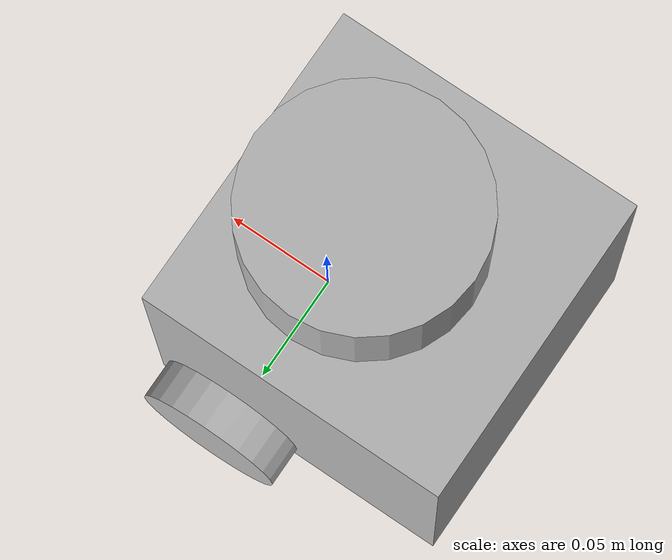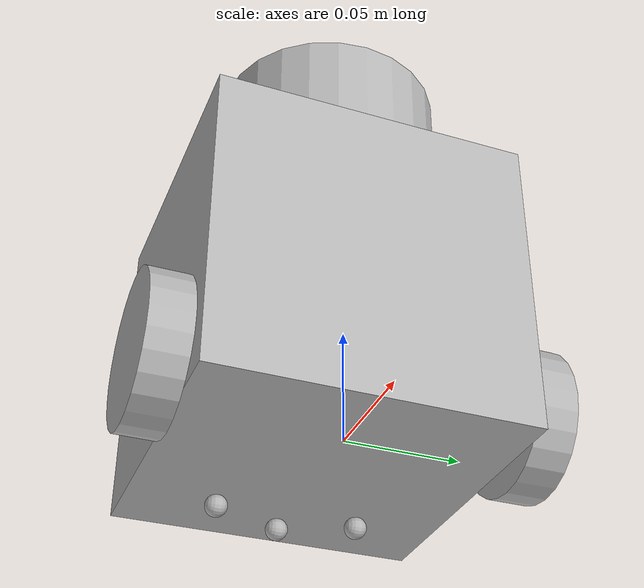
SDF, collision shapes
<?xml version='1.0'?>
<sdf version='1.7'>
  <model name='turtlebot3_custom'>
    <link name='base_footprint'>
      <self_collide>0</self_collide>
      <inertial>
        <pose>0 0 0 0 -0 0</pose>
        <inertia>
          <ixx>1</ixx>
          <ixy>0</ixy>
          <ixz>0</ixz>
          <iyy>1</iyy>
          <iyz>0</iyz>
          <izz>1</izz>
        </inertia>
        <mass>1</mass>
      </inertial>
      <enable_wind>0</enable_wind>
      <kinematic>0</kinematic>
      <pose>0 0 0 0 -0 0</pose>
    </link>
    <link name='base_link'>
      <inertial>
        <pose>-0.032 0 0.07 0 -0 0</pose>
        <inertia>
          <ixx>0.723974</ixx>
          <ixy>4.6864e-10</ixy>
          <ixz>-1.09526e-08</ixz>
          <iyy>0.723974</iyy>
          <iyz>2.85826e-09</iyz>
          <izz>0.65305</izz>
        </inertia>
        <mass>0.825735</mass>
      </inertial>
      <self_collide>0</self_collide>
      <enable_wind>0</enable_wind>
      <kinematic>0</kinematic>
      <pose>0 0 0 0 -0 0</pose>
      <visual name='base_visual'>
        <pose>-0.032 0 0 0 -0 0</pose>
        <geometry>
          <mesh>
            <uri>model://turtlebot3_common/meshes/burger_base.dae</uri>
            <scale>0.001 0.001 0.001</scale>
          </mesh>
        </geometry>
        <material>
          <shader type='pixel'/>
        </material>
        <transparency>0</transparency>
        <cast_shadows>1</cast_shadows>
      </visual>
      <collision name='base_collision'>
        <laser_retro>0</laser_retro>
        <max_contacts>10</max_contacts>
        <pose>-0.032 0 0.07 0 -0 0</pose>
        <geometry>
          <box>
            <size>0.14 0.14 0.14</size>
          </box>
        </geometry>
        <surface>
          <friction>
            <ode>
              <mu>1</mu>
              <mu2>1</mu2>
              <fdir1>0 0 0</fdir1>
              <slip1>0</slip1>
              <slip2>0</slip2>
            </ode>
            <torsional>
              <coefficient>1</coefficient>
              <patch_radius>0</patch_radius>
              <surface_radius>0</surface_radius>
              <use_patch_radius>1</use_patch_radius>
              <ode>
                <slip>0</slip>
              </ode>
            </torsional>
          </friction>
          <bounce>
            <restitution_coefficient>0</restitution_coefficient>
            <threshold>1e+06</threshold>
          </bounce>
          <contact>
            <collide_without_contact>0</collide_without_contact>
            <collide_without_contact_bitmask>1</collide_without_contact_bitmask>
            <collide_bitmask>1</collide_bitmask>
            <ode>
              <soft_cfm>0</soft_cfm>
              <soft_erp>0.2</soft_erp>
              <kp>1e+13</kp>
              <kd>1</kd>
              <max_vel>0.01</max_vel>
              <min_depth>0</min_depth>
            </ode>
            <bullet>
              <split_impulse>1</split_impulse>
              <split_impulse_penetration_threshold>-0.01</split_impulse_penetration_threshold>
              <soft_cfm>0</soft_cfm>
              <soft_erp>0.2</soft_erp>
              <kp>1e+13</kp>
              <kd>1</kd>
            </bullet>
          </contact>
        </surface>
      </collision>
    </link>
    <link name='base_scan'>
      <inertial>
        <pose>-0.02 0 0.161 0 -0 0</pose>
        <inertia>
          <ixx>0.001</ixx>
          <ixy>0</ixy>
          <ixz>0</ixz>
          <iyy>0.001</iyy>
          <iyz>0</iyz>
          <izz>0.001</izz>
        </inertia>
        <mass>0.114</mass>
      </inertial>
      <sensor name='hls_lfcd_lds' type='ray'>
        <always_on>1</always_on>
        <visualize>1</visualize>
        <pose>-0.032 0 0.171 0 -0 0</pose>
        <update_rate>5</update_rate>
        <ray>
          <scan>
            <horizontal>
              <samples>360</samples>
              <resolution>1</resolution>
              <min_angle>0</min_angle>
              <max_angle>6.28</max_angle>
            </horizontal>
            <vertical>
              <samples>1</samples>
              <min_angle>0</min_angle>
              <max_angle>0</max_angle>
            </vertical>
          </scan>
          <range>
            <min>0.12</min>
            <max>3.5</max>
            <resolution>0.015</resolution>
          </range>
          <noise>
            <type>gaussian</type>
            <mean>0</mean>
            <stddev>0.01</stddev>
          </noise>
        </ray>
        <plugin name='turtlebot3_laserscan' filename='libgazebo_ros_ray_sensor.so'>
          <ros>
            <remapping>~/out:=scan</remapping>
          </ros>
          <output_type>sensor_msgs/LaserScan</output_type>
          <frame_name>base_scan</frame_name>
        </plugin>
      </sensor>
      <self_collide>0</self_collide>
      <enable_wind>0</enable_wind>
      <kinematic>0</kinematic>
      <pose>0 0 0 0 -0 0</pose>
      <visual name='lidar_sensor_visual'>
        <pose>-0.032 0 0.171 0 -0 0</pose>
        <geometry>
          <mesh>
            <uri>model://turtlebot3_common/meshes/lds.dae</uri>
            <scale>0.001 0.001 0.001</scale>
          </mesh>
        </geometry>
        <material>
          <shader type='pixel'/>
        </material>
        <transparency>0</transparency>
        <cast_shadows>1</cast_shadows>
      </visual>
      <collision name='lidar_sensor_collision'>
        <laser_retro>0</laser_retro>
        <max_contacts>10</max_contacts>
        <pose>-0.02 0 0.161 0 -0 0</pose>
        <geometry>
          <cylinder>
            <radius>0.0508</radius>
            <length>0.055</length>
          </cylinder>
        </geometry>
        <surface>
          <friction>
            <ode>
              <mu>1</mu>
              <mu2>1</mu2>
              <fdir1>0 0 0</fdir1>
              <slip1>0</slip1>
              <slip2>0</slip2>
            </ode>
            <torsional>
              <coefficient>1</coefficient>
              <patch_radius>0</patch_radius>
              <surface_radius>0</surface_radius>
              <use_patch_radius>1</use_patch_radius>
              <ode>
                <slip>0</slip>
              </ode>
            </torsional>
          </friction>
          <bounce>
            <restitution_coefficient>0</restitution_coefficient>
            <threshold>1e+06</threshold>
          </bounce>
          <contact>
            <collide_without_contact>0</collide_without_contact>
            <collide_without_contact_bitmask>1</collide_without_contact_bitmask>
            <collide_bitmask>1</collide_bitmask>
            <ode>
              <soft_cfm>0</soft_cfm>
              <soft_erp>0.2</soft_erp>
              <kp>1e+13</kp>
              <kd>1</kd>
              <max_vel>0.01</max_vel>
              <min_depth>0</min_depth>
            </ode>
            <bullet>
              <split_impulse>1</split_impulse>
              <split_impulse_penetration_threshold>-0.01</split_impulse_penetration_threshold>
              <soft_cfm>0</soft_cfm>
              <soft_erp>0.2</soft_erp>
              <kp>1e+13</kp>
              <kd>1</kd>
            </bullet>
          </contact>
        </surface>
      </collision>
    </link>
    <link name='camera_link'>
      <self_collide>0</self_collide>
      <inertial>
        <pose>0 0 0 0 -0 0</pose>
        <inertia>
          <ixx>1</ixx>
          <ixy>0</ixy>
          <ixz>0</ixz>
          <iyy>1</iyy>
          <iyz>0</iyz>
          <izz>1</izz>
        </inertia>
        <mass>1</mass>
      </inertial>
      <enable_wind>0</enable_wind>
      <kinematic>0</kinematic>
      <pose>0 0 0 0 -0 0</pose>
    </link>
    <link name='camera_rgb_frame'>
      <inertial>
        <pose>0.069 -0.047 0.107 0 -0 0</pose>
        <inertia>
          <ixx>0.001</ixx>
          <ixy>0</ixy>
          <ixz>0</ixz>
          <iyy>0.001</iyy>
          <iyz>0</iyz>
          <izz>0.001</izz>
        </inertia>
        <mass>0.035</mass>
      </inertial>
      <pose>0.069 -0.047 0.107 0 -0 0</pose>
      <sensor name='camera' type='camera'>
        <always_on>1</always_on>
        <visualize>1</visualize>
        <update_rate>30</update_rate>
        <camera name='intel_realsense_r200'>
          <horizontal_fov>1.02974</horizontal_fov>
          <image>
            <width>1920</width>
            <height>1080</height>
            <format>R8G8B8</format>
          </image>
          <clip>
            <near>0.02</near>
            <far>300</far>
          </clip>
          <noise>
            <type>gaussian</type>
            <mean>0</mean>
            <stddev>0.007</stddev>
          </noise>
        </camera>
        <plugin name='camera_driver' filename='libgazebo_ros_camera.so'>
          <ros/>
        </plugin>
      </sensor>
      <self_collide>0</self_collide>
      <enable_wind>0</enable_wind>
      <kinematic>0</kinematic>
    </link>
    <link name='caster_back_left_link'>
      <pose>-0.067 0.032 -0.004 -1.57 -0 0</pose>
      <inertial>
        <mass>0.001</mass>
        <inertia>
          <ixx>1e-05</ixx>
          <ixy>0</ixy>
          <ixz>0</ixz>
          <iyy>1e-05</iyy>
          <iyz>0</iyz>
          <izz>1e-05</izz>
        </inertia>
        <pose>0 0 0 0 -0 0</pose>
      </inertial>
      <self_collide>0</self_collide>
      <enable_wind>0</enable_wind>
      <kinematic>0</kinematic>
      <gravity>1</gravity>
      <collision name='collision'>
        <laser_retro>0</laser_retro>
        <max_contacts>10</max_contacts>
        <pose>0 0 0 0 -0 0</pose>
        <geometry>
          <sphere>
            <radius>0.005</radius>
          </sphere>
        </geometry>
        <surface>
          <friction>
            <ode>
              <mu>1</mu>
              <mu2>1</mu2>
              <fdir1>0 0 0</fdir1>
              <slip1>0</slip1>
              <slip2>0</slip2>
            </ode>
            <torsional>
              <coefficient>1</coefficient>
              <patch_radius>0</patch_radius>
              <surface_radius>0</surface_radius>
              <use_patch_radius>1</use_patch_radius>
              <ode>
                <slip>0</slip>
              </ode>
            </torsional>
          </friction>
          <bounce>
            <restitution_coefficient>0</restitution_coefficient>
            <threshold>1e+06</threshold>
          </bounce>
          <contact>
            <collide_without_contact>0</collide_without_contact>
            <collide_without_contact_bitmask>1</collide_without_contact_bitmask>
            <collide_bitmask>1</collide_bitmask>
            <ode>
              <soft_cfm>0</soft_cfm>
              <soft_erp>0.2</soft_erp>
              <kp>100000</kp>
              <kd>1</kd>
              <max_vel>0.01</max_vel>
              <min_depth>0.001</min_depth>
            </ode>
            <bullet>
              <split_impulse>1</split_impulse>
              <split_impulse_penetration_threshold>-0.01</split_impulse_penetration_threshold>
              <soft_cfm>0</soft_cfm>
              <soft_erp>0.2</soft_erp>
              <kp>100000</kp>
              <kd>1</kd>
            </bullet>
          </contact>
        </surface>
      </collision>
    </link>
    <link name='caster_back_link'>
      <pose>-0.081 0 -0.004 -1.57 -0 0</pose>
      <inertial>
        <mass>0.005</mass>
        <inertia>
          <ixx>0.001</ixx>
          <ixy>0</ixy>
          <ixz>0</ixz>
          <iyy>0.001</iyy>
          <iyz>0</iyz>
          <izz>0.001</izz>
        </inertia>
        <pose>0 0 0 0 -0 0</pose>
      </inertial>
      <self_collide>0</self_collide>
      <enable_wind>0</enable_wind>
      <kinematic>0</kinematic>
      <collision name='collision'>
        <laser_retro>0</laser_retro>
        <max_contacts>10</max_contacts>
        <pose>0 0 0 0 -0 0</pose>
        <geometry>
          <sphere>
            <radius>0.005</radius>
          </sphere>
        </geometry>
        <surface>
          <friction>
            <ode>
              <mu>1</mu>
              <mu2>1</mu2>
              <fdir1>0 0 0</fdir1>
              <slip1>0</slip1>
              <slip2>0</slip2>
            </ode>
            <torsional>
              <coefficient>1</coefficient>
              <patch_radius>0</patch_radius>
              <surface_radius>0</surface_radius>
              <use_patch_radius>1</use_patch_radius>
              <ode>
                <slip>0</slip>
              </ode>
            </torsional>
          </friction>
          <bounce>
            <restitution_coefficient>0</restitution_coefficient>
            <threshold>1e+06</threshold>
          </bounce>
          <contact>
            <collide_without_contact>0</collide_without_contact>
            <collide_without_contact_bitmask>1</collide_without_contact_bitmask>
            <collide_bitmask>1</collide_bitmask>
            <ode>
              <soft_cfm>0</soft_cfm>
              <soft_erp>0.2</soft_erp>
              <kp>100000</kp>
              <kd>1</kd>
              <max_vel>0.01</max_vel>
              <min_depth>0.001</min_depth>
            </ode>
            <bullet>
              <split_impulse>1</split_impulse>
              <split_impulse_penetration_threshold>-0.01</split_impulse_penetration_threshold>
              <soft_cfm>0</soft_cfm>
              <soft_erp>0.2</soft_erp>
              <kp>100000</kp>
              <kd>1</kd>
            </bullet>
          </contact>
        </surface>
      </collision>
    </link>
    <link name='caster_back_right_link'>
      <pose>-0.067 -0.032 -0.004 -1.57 -0 0</pose>
      <inertial>
        <mass>0.001</mass>
        <inertia>
          <ixx>1e-05</ixx>
          <ixy>0</ixy>
          <ixz>0</ixz>
          <iyy>1e-05</iyy>
          <iyz>0</iyz>
          <izz>1e-05</izz>
        </inertia>
        <pose>0 0 0 0 -0 0</pose>
      </inertial>
      <self_collide>0</self_collide>
      <enable_wind>0</enable_wind>
      <kinematic>0</kinematic>
      <gravity>1</gravity>
      <collision name='collision'>
        <laser_retro>0</laser_retro>
        <max_contacts>10</max_contacts>
        <pose>0 0 0 0 -0 0</pose>
        <geometry>
          <sphere>
            <radius>0.005</radius>
          </sphere>
        </geometry>
        <surface>
          <friction>
            <ode>
              <mu>1</mu>
              <mu2>1</mu2>
              <fdir1>0 0 0</fdir1>
              <slip1>0</slip1>
              <slip2>0</slip2>
            </ode>
            <torsional>
              <coefficient>1</coefficient>
              <patch_radius>0</patch_radius>
              <surface_radius>0</surface_radius>
              <use_patch_radius>1</use_patch_radius>
              <ode>
                <slip>0</slip>
              </ode>
            </torsional>
          </friction>
          <bounce>
            <restitution_coefficient>0</restitution_coefficient>
            <threshold>1e+06</threshold>
          </bounce>
          <contact>
            <collide_without_contact>0</collide_without_contact>
            <collide_without_contact_bitmask>1</collide_without_contact_bitmask>
            <collide_bitmask>1</collide_bitmask>
            <ode>
              <soft_cfm>0</soft_cfm>
              <soft_erp>0.2</soft_erp>
              <kp>100000</kp>
              <kd>1</kd>
              <max_vel>0.01</max_vel>
              <min_depth>0.001</min_depth>
            </ode>
            <bullet>
              <split_impulse>1</split_impulse>
              <split_impulse_penetration_threshold>-0.01</split_impulse_penetration_threshold>
              <soft_cfm>0</soft_cfm>
              <soft_erp>0.2</soft_erp>
              <kp>100000</kp>
              <kd>1</kd>
            </bullet>
          </contact>
        </surface>
      </collision>
    </link>
    <link name='imu_link'>
      <sensor name='tb3_imu' type='imu'>
        <always_on>1</always_on>
        <update_rate>200</update_rate>
        <imu>
          <angular_velocity>
            <x>
              <noise type='gaussian'>
                <mean>0</mean>
                <stddev>0.0002</stddev>
              </noise>
            </x>
            <y>
              <noise type='gaussian'>
                <mean>0</mean>
                <stddev>0.0002</stddev>
              </noise>
            </y>
            <z>
              <noise type='gaussian'>
                <mean>0</mean>
                <stddev>0.0002</stddev>
              </noise>
            </z>
          </angular_velocity>
          <linear_acceleration>
            <x>
              <noise type='gaussian'>
                <mean>0</mean>
                <stddev>0.017</stddev>
              </noise>
            </x>
            <y>
              <noise type='gaussian'>
                <mean>0</mean>
                <stddev>0.017</stddev>
              </noise>
            </y>
            <z>
              <noise type='gaussian'>
                <mean>0</mean>
                <stddev>0.017</stddev>
              </noise>
            </z>
          </linear_acceleration>
          <angular_velocity/>
          <linear_acceleration/>
        </imu>
        <plugin name='turtlebot3_imu' filename='libgazebo_ros_imu_sensor.so'>
          <ros>
            <remapping>~/out:=imu</remapping>
          </ros>
        </plugin>
      </sensor>
      <self_collide>0</self_collide>
      <inertial>
        <pose>0 0 0 0 -0 0</pose>
        <inertia>
          <ixx>1</ixx>
          <ixy>0</ixy>
          <ixz>0</ixz>
          <iyy>1</iyy>
          <iyz>0</iyz>
          <izz>1</izz>
        </inertia>
        <mass>1</mass>
      </inertial>
      <enable_wind>0</enable_wind>
      <kinematic>0</kinematic>
      <pose>0 0 0 0 -0 0</pose>
    </link>
    <link name='wheel_left_link'>
      <inertial>
        <pose>0 0.08 0.023 -1.57 0 0</pose>
        <inertia>
          <ixx>0.00181582</ixx>
          <ixy>-9.3392e-12</ixy>
          <ixz>1.04909e-11</ixz>
          <iyy>0.00329221</iyy>
          <iyz>5.75694e-11</iyz>
          <izz>0.00181582</izz>
        </inertia>
        <mass>0.0284989</mass>
      </inertial>
      <self_collide>0</self_collide>
      <enable_wind>0</enable_wind>
      <kinematic>0</kinematic>
      <pose>0 0 0 0 -0 0</pose>
      <visual name='wheel_left_visual'>
        <pose>0 0.08 0.023 0 -0 0</pose>
        <geometry>
          <mesh>
            <uri>model://turtlebot3_common/meshes/tire.dae</uri>
            <scale>0.001 0.001 0.001</scale>
          </mesh>
        </geometry>
        <material>
          <shader type='pixel'/>
        </material>
        <transparency>0</transparency>
        <cast_shadows>1</cast_shadows>
      </visual>
      <collision name='wheel_left_collision'>
        <laser_retro>0</laser_retro>
        <max_contacts>10</max_contacts>
        <pose>0 0.08 0.023 -1.57 0 0</pose>
        <geometry>
          <cylinder>
            <radius>0.033</radius>
            <length>0.018</length>
          </cylinder>
        </geometry>
        <surface>
          <friction>
            <ode>
              <mu>100000</mu>
              <mu2>100000</mu2>
              <fdir1>0 0 0</fdir1>
              <slip1>0</slip1>
              <slip2>0</slip2>
            </ode>
            <torsional>
              <coefficient>1</coefficient>
              <patch_radius>0</patch_radius>
              <surface_radius>0</surface_radius>
              <use_patch_radius>1</use_patch_radius>
              <ode>
                <slip>0</slip>
              </ode>
            </torsional>
          </friction>
          <bounce>
            <restitution_coefficient>0</restitution_coefficient>
            <threshold>1e+06</threshold>
          </bounce>
          <contact>
            <collide_without_contact>0</collide_without_contact>
            <collide_without_contact_bitmask>1</collide_without_contact_bitmask>
            <collide_bitmask>1</collide_bitmask>
            <ode>
              <soft_cfm>0</soft_cfm>
              <soft_erp>0.2</soft_erp>
              <kp>100000</kp>
              <kd>1</kd>
              <max_vel>0.01</max_vel>
              <min_depth>0.001</min_depth>
            </ode>
            <bullet>
              <split_impulse>1</split_impulse>
              <split_impulse_penetration_threshold>-0.01</split_impulse_penetration_threshold>
              <soft_cfm>0</soft_cfm>
              <soft_erp>0.2</soft_erp>
              <kp>100000</kp>
              <kd>1</kd>
            </bullet>
          </contact>
        </surface>
      </collision>
    </link>
    <link name='wheel_right_link'>
      <inertial>
        <pose>0 -0.08 0.023 -1.57 0 0</pose>
        <inertia>
          <ixx>0.00181582</ixx>
          <ixy>-9.3392e-12</ixy>
          <ixz>1.04909e-11</ixz>
          <iyy>0.00329221</iyy>
          <iyz>5.75694e-11</iyz>
          <izz>0.00181582</izz>
        </inertia>
        <mass>0.0284989</mass>
      </inertial>
      <self_collide>0</self_collide>
      <enable_wind>0</enable_wind>
      <kinematic>0</kinematic>
      <pose>0 0 0 0 -0 0</pose>
      <visual name='wheel_right_visual'>
        <pose>0 -0.08 0.023 0 -0 0</pose>
        <geometry>
          <mesh>
            <uri>model://turtlebot3_common/meshes/tire.dae</uri>
            <scale>0.001 0.001 0.001</scale>
          </mesh>
        </geometry>
        <material>
          <shader type='pixel'/>
        </material>
        <transparency>0</transparency>
        <cast_shadows>1</cast_shadows>
      </visual>
      <collision name='wheel_right_collision'>
        <laser_retro>0</laser_retro>
        <max_contacts>10</max_contacts>
        <pose>0 -0.08 0.023 -1.57 0 0</pose>
        <geometry>
          <cylinder>
            <radius>0.033</radius>
            <length>0.018</length>
          </cylinder>
        </geometry>
        <surface>
          <friction>
            <ode>
              <mu>100000</mu>
              <mu2>100000</mu2>
              <fdir1>0 0 0</fdir1>
              <slip1>0</slip1>
              <slip2>0</slip2>
            </ode>
            <torsional>
              <coefficient>1</coefficient>
              <patch_radius>0</patch_radius>
              <surface_radius>0</surface_radius>
              <use_patch_radius>1</use_patch_radius>
              <ode>
                <slip>0</slip>
              </ode>
            </torsional>
          </friction>
          <bounce>
            <restitution_coefficient>0</restitution_coefficient>
            <threshold>1e+06</threshold>
          </bounce>
          <contact>
            <collide_without_contact>0</collide_without_contact>
            <collide_without_contact_bitmask>1</collide_without_contact_bitmask>
            <collide_bitmask>1</collide_bitmask>
            <ode>
              <soft_cfm>0</soft_cfm>
              <soft_erp>0.2</soft_erp>
              <kp>100000</kp>
              <kd>1</kd>
              <max_vel>0.01</max_vel>
              <min_depth>0.001</min_depth>
            </ode>
            <bullet>
              <split_impulse>1</split_impulse>
              <split_impulse_penetration_threshold>-0.01</split_impulse_penetration_threshold>
              <soft_cfm>0</soft_cfm>
              <soft_erp>0.2</soft_erp>
              <kp>100000</kp>
              <kd>1</kd>
            </bullet>
          </contact>
        </surface>
      </collision>
    </link>
    <joint name='base_joint' type='fixed'>
      <parent>base_footprint</parent>
      <child>base_link</child>
      <pose>0 0 0.01 0 -0 0</pose>
      <physics>
        <ode>
          <limit>
            <cfm>0</cfm>
            <erp>0.2</erp>
          </limit>
          <suspension>
            <cfm>0</cfm>
            <erp>0.2</erp>
          </suspension>
        </ode>
      </physics>
    </joint>
    <joint name='camera_joint' type='fixed'>
      <parent>base_link</parent>
      <child>camera_link</child>
      <pose>0.064 -0.065 0.094 0 -0 0</pose>
      <physics>
        <ode>
          <limit>
            <cfm>0</cfm>
            <erp>0.2</erp>
          </limit>
          <suspension>
            <cfm>0</cfm>
            <erp>0.2</erp>
          </suspension>
        </ode>
      </physics>
    </joint>
    <joint name='camera_rgb_joint' type='fixed'>
      <parent>camera_link</parent>
      <child>camera_rgb_frame</child>
      <pose>0.005 0.018 0.013 0 -0 0</pose>
      <physics>
        <ode>
          <limit>
            <cfm>0</cfm>
            <erp>0.2</erp>
          </limit>
          <suspension>
            <cfm>0</cfm>
            <erp>0.2</erp>
          </suspension>
        </ode>
      </physics>
    </joint>
    <joint name='caster_back_joint' type='ball'>
      <parent>base_link</parent>
      <child>caster_back_link</child>
      <pose>0 0 0 0 -0 0</pose>
      <physics>
        <ode>
          <limit>
            <cfm>0</cfm>
            <erp>0.2</erp>
          </limit>
          <suspension>
            <cfm>0</cfm>
            <erp>0.2</erp>
          </suspension>
        </ode>
      </physics>
    </joint>
    <joint name='caster_back_left_joint' type='ball'>
      <parent>base_link</parent>
      <child>caster_back_left_link</child>
      <pose>0 0 0 0 -0 0</pose>
      <physics>
        <ode>
          <limit>
            <cfm>0</cfm>
            <erp>0.2</erp>
          </limit>
          <suspension>
            <cfm>0</cfm>
            <erp>0.2</erp>
          </suspension>
        </ode>
      </physics>
    </joint>
    <joint name='caster_back_right_joint' type='ball'>
      <parent>base_link</parent>
      <child>caster_back_right_link</child>
      <pose>0 0 0 0 -0 0</pose>
      <physics>
        <ode>
          <limit>
            <cfm>0</cfm>
            <erp>0.2</erp>
          </limit>
          <suspension>
            <cfm>0</cfm>
            <erp>0.2</erp>
          </suspension>
        </ode>
      </physics>
    </joint>
    <joint name='imu_joint' type='fixed'>
      <parent>base_link</parent>
      <child>imu_link</child>
      <pose>-0.032 0 0.068 0 -0 0</pose>
      <physics>
        <ode>
          <limit>
            <cfm>0</cfm>
            <erp>0.2</erp>
          </limit>
          <suspension>
            <cfm>0</cfm>
            <erp>0.2</erp>
          </suspension>
        </ode>
      </physics>
    </joint>
    <joint name='lidar_joint' type='fixed'>
      <parent>base_link</parent>
      <child>base_scan</child>
      <pose>-0.032 0 0.171 0 -0 0</pose>
      <physics>
        <ode>
          <limit>
            <cfm>0</cfm>
            <erp>0.2</erp>
          </limit>
          <suspension>
            <cfm>0</cfm>
            <erp>0.2</erp>
          </suspension>
        </ode>
      </physics>
    </joint>
    <joint name='wheel_left_joint' type='revolute'>
      <parent>base_link</parent>
      <child>wheel_left_link</child>
      <pose>0 0.08 0.023 -1.57 0 0</pose>
      <axis>
        <xyz>0 0 1</xyz>
        <limit>
          <lower>-1e+16</lower>
          <upper>1e+16</upper>
          <effort>-1</effort>
          <velocity>-1</velocity>
        </limit>
        <dynamics>
          <spring_reference>0</spring_reference>
          <spring_stiffness>0</spring_stiffness>
          <damping>0</damping>
          <friction>0</friction>
        </dynamics>
      </axis>
      <physics>
        <ode>
          <limit>
            <cfm>0</cfm>
            <erp>0.2</erp>
          </limit>
          <suspension>
            <cfm>0</cfm>
            <erp>0.2</erp>
          </suspension>
        </ode>
      </physics>
    </joint>
    <joint name='wheel_right_joint' type='revolute'>
      <parent>base_link</parent>
      <child>wheel_right_link</child>
      <pose>0 -0.08 0.023 -1.57 0 0</pose>
      <axis>
        <xyz>0 0 1</xyz>
        <limit>
          <lower>-1e+16</lower>
          <upper>1e+16</upper>
          <effort>-1</effort>
          <velocity>-1</velocity>
        </limit>
        <dynamics>
          <spring_reference>0</spring_reference>
          <spring_stiffness>0</spring_stiffness>
          <damping>0</damping>
          <friction>0</friction>
        </dynamics>
      </axis>
      <physics>
        <ode>
          <limit>
            <cfm>0</cfm>
            <erp>0.2</erp>
          </limit>
          <suspension>
            <cfm>0</cfm>
            <erp>0.2</erp>
          </suspension>
        </ode>
      </physics>
    </joint>
    <static>0</static>
    <allow_auto_disable>1</allow_auto_disable>
    <plugin name='turtlebot3_diff_drive' filename='libgazebo_ros_diff_drive.so'>
      <ros/>
      <update_rate>30</update_rate>
      <left_joint>wheel_left_joint</left_joint>
      <right_joint>wheel_right_joint</right_joint>
      <wheel_separation>0.160</wheel_separation>
      <wheel_diameter>0.066</wheel_diameter>
      <max_wheel_torque>20</max_wheel_torque>
      <max_wheel_acceleration>1.0</max_wheel_acceleration>
      <command_topic>cmd_vel</command_topic>
      <publish_odom>1</publish_odom>
      <publish_odom_tf>1</publish_odom_tf>
      <publish_wheel_tf>0</publish_wheel_tf>
      <odometry_topic>odom</odometry_topic>
      <odometry_frame>odom</odometry_frame>
      <robot_base_frame>base_footprint</robot_base_frame>
    </plugin>
    <plugin name='turtlebot3_joint_state' filename='libgazebo_ros_joint_state_publisher.so'>
      <ros>
        <remapping>~/out:=joint_states</remapping>
      </ros>
      <update_rate>30</update_rate>
      <joint_name>wheel_left_joint</joint_name>
      <joint_name>wheel_right_joint</joint_name>
    </plugin>
  </model>
</sdf>
